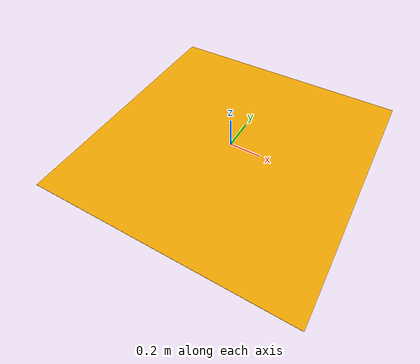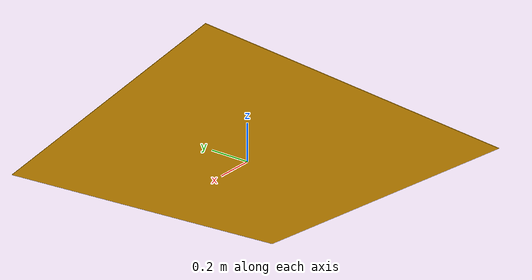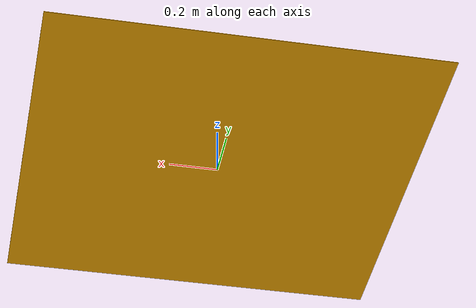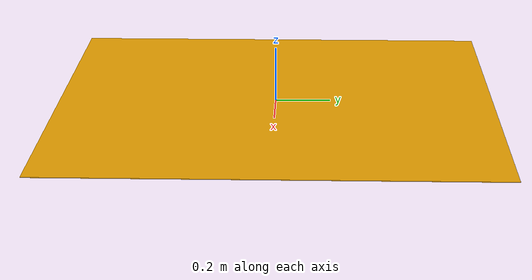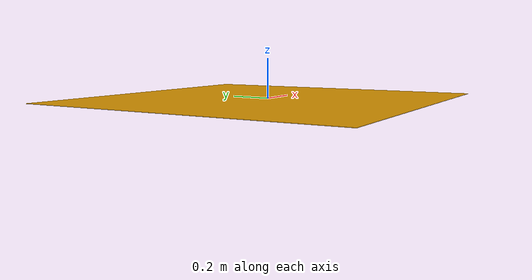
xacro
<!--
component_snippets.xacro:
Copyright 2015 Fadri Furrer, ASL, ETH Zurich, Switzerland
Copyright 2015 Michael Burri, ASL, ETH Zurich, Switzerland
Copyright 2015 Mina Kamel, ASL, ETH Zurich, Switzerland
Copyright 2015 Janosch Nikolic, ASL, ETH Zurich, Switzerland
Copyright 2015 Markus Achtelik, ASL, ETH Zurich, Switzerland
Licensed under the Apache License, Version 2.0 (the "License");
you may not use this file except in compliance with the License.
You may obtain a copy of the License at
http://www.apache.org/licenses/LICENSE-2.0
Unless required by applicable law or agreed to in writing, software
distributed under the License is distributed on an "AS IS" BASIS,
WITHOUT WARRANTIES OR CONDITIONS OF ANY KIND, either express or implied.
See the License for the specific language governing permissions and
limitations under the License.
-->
<?xml version="1.0"?>
<robot name="target" xmlns:xacro="http://ros.org/wiki/xacro">
  <link name="target/base_link">
    <inertial>
      <origin xyz="0 0 0"/>
      <mass value="1.0"/>
      <inertia ixx="1.0" ixy="0.0" ixz="0.0" iyy="1.0" iyz="0.0" izz="1.0"/>
    </inertial>
    <collision>
      <origin xyz="0 0 0" rpy="0 0 0" />
      <geometry>
        <box size="0.8 0.8 0.001" />
      </geometry>
    </collision>
    <visual>
      <origin xyz="0 0 0" rpy="0 0 0" />
      <geometry>
        <mesh filename="package://rotors_description/meshes/target.dae" scale="1 1 1" />
      </geometry>
    </visual>
  </link>

  <xacro:include filename="$(find rotors_description)/urdf/component_snippets.xacro" />

  <xacro:default_imu namespace="target" parent_link="target/base_link" />

  <gazebo>
    <plugin name="landing_target_plugin" filename="librotors_gazebo_landing_target_plugin.so">
      <robotNamespace>target</robotNamespace>
      <linkName>target/base_link</linkName>
    </plugin>
  </gazebo>
</robot>

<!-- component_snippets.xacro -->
<robot xmlns:xacro="http://ros.org/wiki/xacro">
  <xacro:property name="pi" value="3.14159265359" />

  <!-- Macro to add logging to a bag file. -->
  <xacro:macro name="bag_plugin_macro"
    params="namespace bag_file rotor_velocity_slowdown_sim wait_to_record_bag">
    <gazebo>
      <plugin filename="librotors_gazebo_bag_plugin.so" name="rosbag">
        <robotNamespace>${namespace}</robotNamespace>
        <bagFileName>${bag_file}</bagFileName>
        <linkName>${namespace}/base_link</linkName>
        <frameId>${namespace}/base_link</frameId>
        <rotorVelocitySlowdownSim>${rotor_velocity_slowdown_sim}</rotorVelocitySlowdownSim>
	<waitToRecordBag>${wait_to_record_bag}</waitToRecordBag>
      </plugin>
    </gazebo>
  </xacro:macro>

  <!-- Macro to add a camera. -->
  <xacro:macro name="camera_macro"
    params="namespace parent_link camera_suffix frame_rate
      horizontal_fov image_width image_height image_format min_distance
      max_distance noise_mean noise_stddev enable_visual *geometry *origin">
    <link name="${namespace}/camera_${camera_suffix}_link">
      <collision>
        <origin xyz="0 0 0" rpy="0 0 0" />
        <geometry>
          <xacro:insert_block name="geometry" />
        </geometry>
      </collision>
      <xacro:if value="${enable_visual}">
        <visual>
          <origin xyz="0 0 0" rpy="0 ${pi/2} 0" />
          <geometry>
            <xacro:insert_block name="geometry" />
          </geometry>
          <material name="red" />
        </visual>
      </xacro:if>
      <inertial>
        <mass value="1e-5" />
        <origin xyz="0 0 0" rpy="0 0 0" />
        <inertia ixx="1e-6" ixy="0" ixz="0" iyy="1e-6" iyz="0" izz="1e-6" />
      </inertial>
    </link>
    <joint name="${namespace}/camera_${camera_suffix}_joint" type="fixed">
      <xacro:insert_block name="origin" />
      <parent link="${parent_link}" />
      <child link="${namespace}/camera_${camera_suffix}_link" />
    </joint>
    <link name="${namespace}/camera_${camera_suffix}_optical_link" />
    <joint name="${namespace}/camera_${camera_suffix}_optical_joint" type="fixed" >
      <origin xyz="0 0 0" rpy="${-pi/2} 0 ${-pi/2}" />
      <parent link="${namespace}/camera_${camera_suffix}_link" />
      <child link="${namespace}/camera_${camera_suffix}_optical_link" />
    </joint>
    <gazebo reference="${namespace}/camera_${camera_suffix}_link">
      <sensor type="camera" name="${namespace}_camera_${camera_suffix}">
        <update_rate>${frame_rate}</update_rate>
        <camera name="head">
          <horizontal_fov>${horizontal_fov}</horizontal_fov>
          <image>
            <width>${image_width}</width>
            <height>${image_height}</height>
            <format>${image_format}</format>
          </image>
          <clip>
            <near>${min_distance}</near>
            <far>${max_distance}</far>
          </clip>
          <noise>
            <type>gaussian</type>
            <!-- Noise is sampled independently per pixel on each frame.
                 That pixel's noise value is added to each of its color
                 channels, which at that point lie in the range [0,1]. -->
            <mean>${noise_mean}</mean>
            <stddev>${noise_stddev}</stddev>
          </noise>
        </camera>
        <plugin name="${namespace}_camera_${camera_suffix}_controller" filename="libgazebo_ros_camera.so">
          <robotNamespace>${namespace}</robotNamespace>
          <alwaysOn>true</alwaysOn>
          <updateRate>${frame_rate}</updateRate>
          <cameraName>camera_${camera_suffix}</cameraName>
          <imageTopicName>image_raw</imageTopicName>
          <cameraInfoTopicName>camera_info</cameraInfoTopicName>
          <frameName>camera_${camera_suffix}_link</frameName>
          <hackBaseline>0.0</hackBaseline>
          <distortionK1>0.0</distortionK1>
          <distortionK2>0.0</distortionK2>
          <distortionK3>0.0</distortionK3>
          <distortionT1>0.0</distortionT1>
          <distortionT2>0.0</distortionT2>
        </plugin>
      </sensor>
    </gazebo>
  </xacro:macro>

  <!-- Camera joint macro - just the joints, links, and collisions for a single
       camera. -->
  <xacro:macro name="camera_joint_macro"
    params="namespace parent_link camera_suffix enable_visual *origin *geometry" >
    <link name="${namespace}/camera_${camera_suffix}_link">
      <collision>
        <origin xyz="0 0 0" rpy="0 0 0" />
        <geometry>
          <xacro:insert_block name="geometry" />
        </geometry>
      </collision>
      <xacro:if value="${enable_visual}">
        <visual>
          <origin xyz="0 0 0" rpy="0 0 0" />
          <geometry>
            <xacro:insert_block name="geometry" />
          </geometry>
          <material name="red" />
        </visual>
      </xacro:if>
      <inertial>
        <mass value="1e-5" />
        <origin xyz="0 0 0" rpy="0 0 0" />
        <inertia ixx="1e-6" ixy="0" ixz="0" iyy="1e-6" iyz="0" izz="1e-6" />
      </inertial>
    </link>
    <joint name="${namespace}/camera_${camera_suffix}_joint" type="fixed">
      <xacro:insert_block name="origin" />
      <parent link="${parent_link}" />
      <child link="${namespace}/camera_${camera_suffix}_link" />
    </joint>
  </xacro:macro>

  <!-- Camera sensor macro - just image parameters. -->
  <xacro:macro name="camera_sensor_macro"
    params="camera_suffix horizontal_fov image_width image_height
      image_format min_distance max_distance noise_mean noise_stddev
      baseline" >
    <camera name="${camera_suffix}">
      <pose>0 ${-baseline} 0 0 0 0</pose>
      <horizontal_fov>${horizontal_fov}</horizontal_fov>
      <image>
        <width>${image_width}</width>
        <height>${image_height}</height>
        <format>${image_format}</format>
      </image>
      <clip>
        <near>${min_distance}</near>
        <far>${max_distance}</far>
      </clip>
      <noise>
        <type>gaussian</type>
        <!-- Noise is sampled independently per pixel on each frame.
             That pixel's noise value is added to each of its color
             channels, which at that point lie in the range [0,1]. -->
        <mean>${noise_mean}</mean>
        <stddev>${noise_stddev}</stddev>
      </noise>
    </camera>
  </xacro:macro>

  <!-- Macro to add a multicamera (stereo pair). -->
  <xacro:macro name="stereo_camera_macro"
    params="namespace camera_name parent_link frame_rate
      horizontal_fov image_width image_height image_format min_distance
      max_distance noise_mean noise_stddev enable_visual origin_offset_x
      baseline_y origin_offset_z *geometry">
    <!-- These are parameters for the left camera link and then the right
        as well. -->
    <xacro:camera_joint_macro namespace="${namespace}"
      parent_link="${parent_link}"
      camera_suffix="left" enable_visual="${enable_visual}">
      <origin xyz="${origin_offset_x} ${baseline_y/2} ${origin_offset_z}" rpy="0 0 0" />
      <xacro:insert_block name="geometry" />
    </xacro:camera_joint_macro>
    <xacro:camera_joint_macro namespace="${namespace}"
      parent_link="${parent_link}"
      camera_suffix="right" enable_visual="${enable_visual}">
      <origin xyz="${origin_offset_x} ${-baseline_y/2} ${origin_offset_z}" rpy="0 0 0" />
      <xacro:insert_block name="geometry" />
    </xacro:camera_joint_macro>

    <link name="${namespace}/camera_left_optical_link" />
    <joint name="${namespace}/camera_left_optical_joint" type="fixed" >
      <origin xyz="0 0 0" rpy="${-pi/2} 0 ${-pi/2}" />
      <parent link="${namespace}/camera_left_link" />
      <child link="${namespace}/camera_left_optical_link" />
    </joint>

    <!-- Both cameras in the pair are anchored off the left camera frame. -->
    <gazebo reference="${namespace}/camera_left_link">
      <sensor type="multicamera" name="${namespace}_stereo_camera">
        <update_rate>${frame_rate}</update_rate>

        <!-- Here we set up the individual cameras of the stereo head. -->
        <xacro:camera_sensor_macro camera_suffix="left"
            horizontal_fov="${horizontal_fov}" image_width="${image_width}"
            image_height="${image_height}" image_format="${image_format}"
            min_distance="${min_distance}" max_distance="${max_distance}"
            noise_mean="${noise_mean}" noise_stddev="${noise_stddev}"
            baseline="0">
        </xacro:camera_sensor_macro>

        <xacro:camera_sensor_macro camera_suffix="right"
            horizontal_fov="${horizontal_fov}" image_width="${image_width}"
            image_height="${image_height}" image_format="${image_format}"
            min_distance="${min_distance}" max_distance="${max_distance}"
            noise_mean="${noise_mean}" noise_stddev="${noise_stddev}"
            baseline="${baseline_y}">
        </xacro:camera_sensor_macro>

        <!-- Stereo controller, setting the transforms between the two cameras. -->
        <plugin name="${namespace}_stereo_camera_controller" filename="libgazebo_ros_multicamera.so">
          <alwaysOn>true</alwaysOn>
          <updateRate>0.0</updateRate>
          <cameraName>${camera_name}</cameraName>
          <imageTopicName>image_raw</imageTopicName>
          <cameraInfoTopicName>camera_info</cameraInfoTopicName>
          <frameName>${camera_name}/camera_left_link</frameName>
          <hackBaseline>${baseline_y}</hackBaseline>
          <distortionK1>0.0</distortionK1>
          <distortionK2>0.0</distortionK2>
          <distortionK3>0.0</distortionK3>
          <distortionT1>0.0</distortionT1>
          <distortionT2>0.0</distortionT2>
        </plugin>
      </sensor>
    </gazebo>
  </xacro:macro>

  <!-- Macro to add the controller interface. -->
  <xacro:macro name="controller_plugin_macro" params="namespace imu_sub_topic">
    <gazebo>
      <plugin name="controller_interface" filename="librotors_gazebo_controller_interface.so">
        <robotNamespace>${namespace}</robotNamespace>
        <commandAttitudeThrustSubTopic>command/attitude</commandAttitudeThrustSubTopic>
        <commandRateThrustSubTopic>command/rate</commandRateThrustSubTopic>
        <commandMotorSpeedSubTopic>command/motor_speed</commandMotorSpeedSubTopic>
        <imuSubTopic>${imu_sub_topic}</imuSubTopic>
        <motorSpeedCommandPubTopic>gazebo/command/motor_speed</motorSpeedCommandPubTopic>
      </plugin>
    </gazebo>
  </xacro:macro>

  <!-- ==================== ROS INTERFACE MACRO ====================== -->

  <!-- ================== MAVLINK INTERFACE MACRO ==================== -->
  <xacro:macro name="mavlink_interface_macro"
    params="namespace mavlink_sub_topic imu_sub_topic mavlink_pub_topic
      motors_speeds_pub_topic gps_update_freq rotor_count reference_magnetic_field_north
      reference_magnetic_field_east reference_magnetic_field_down reference_latitude
      reference_longitude reference_altitude">
    <gazebo>
      <plugin name="mavlink_interface" filename="librotors_gazebo_mavlink_interface.so">
        <robotNamespace>${namespace}</robotNamespace>
	<mavlinkControlSubTopic>${mavlink_sub_topic}</mavlinkControlSubTopic>
        <imuSubTopic>${imu_sub_topic}</imuSubTopic>
        <mavlinkHilSensorPubTopic>${mavlink_pub_topic}</mavlinkHilSensorPubTopic>
	<motorSpeedsPubTopic>${motors_speeds_pub_topic}</motorSpeedsPubTopic>
	<gpsUpdateFreq>${gps_update_freq}</gpsUpdateFreq> <!-- Frequency of HIL GPS messages [Hz] -->
	<rotorCount>${rotor_count}</rotorCount>
        <referenceMagNorth>${reference_magnetic_field_north}</referenceMagNorth>
        <referenceMagEast>${reference_magnetic_field_east}</referenceMagEast>
        <referenceMagDown>${reference_magnetic_field_down}</referenceMagDown>
	<referenceLatitude>${reference_latitude}</referenceLatitude> <!-- the initial latitude [degrees [-90, 90]] -->
        <referenceLongitude>${reference_longitude}</referenceLongitude> <!-- the initial longitude [degrees [-180, 180]] -->
        <referenceAltitude>${reference_altitude}</referenceAltitude> <!-- the initial altitude [m] -->
      </plugin>
    </gazebo>
  </xacro:macro>

  <!-- Macro to add an IMU. -->
  <xacro:macro name="imu_plugin_macro"
    params="namespace imu_suffix parent_link imu_topic
      mass_imu_sensor gyroscope_noise_density gyroscope_random_walk
      gyroscope_bias_correlation_time gyroscope_turn_on_bias_sigma
      accelerometer_noise_density accelerometer_random_walk
      accelerometer_bias_correlation_time accelerometer_turn_on_bias_sigma
      measurement_divisor *inertia *origin">
    <!-- IMU link -->
    <link name="${namespace}/imu${imu_suffix}_link">
      <inertial>
        <xacro:insert_block name="inertia" />
        <mass value="${mass_imu_sensor}" />  <!-- [kg] -->
        <origin xyz="0 0 0" rpy="0 0 0" />
      </inertial>
    </link>
    <!-- IMU joint -->
    <joint name="${namespace}/imu${imu_suffix}_joint" type="revolute">
      <xacro:insert_block name="origin" />
      <parent link="${parent_link}" />
      <child link="${namespace}/imu${imu_suffix}_link" />
      <limit upper="0" lower="0" effort="0" velocity="0" />
    </joint>
    <gazebo>
      <plugin filename="librotors_gazebo_imu_plugin.so" name="rotors_gazebo_imu${imu_suffix}_plugin">
      <!-- A good description of the IMU parameters can be found in the kalibr documentation:
           https://github.com/ethz-asl/kalibr/wiki/IMU-Noise-Model-and-Intrinsics -->
        <robotNamespace>${namespace}</robotNamespace> <!-- (string, required): ros namespace in which the messages are published -->
        <linkName>${namespace}/imu${imu_suffix}_link</linkName> <!-- (string, required): name of the body which holds the IMU sensor -->
        <imuTopic>${imu_topic}</imuTopic> <!-- (string): name of the sensor output topic and prefix of service names (defaults to imu) -->
        <gyroscopeNoiseDensity>${gyroscope_noise_density}</gyroscopeNoiseDensity> <!-- Gyroscope noise density (two-sided spectrum) [rad/s/sqrt(Hz)] -->
        <gyroscopeRandomWalk>${gyroscope_random_walk}</gyroscopeRandomWalk> <!-- Gyroscope bias random walk [rad/s/s/sqrt(Hz)] -->
        <gyroscopeBiasCorrelationTime>${gyroscope_bias_correlation_time}</gyroscopeBiasCorrelationTime> <!-- Gyroscope bias correlation time constant [s] -->
        <gyroscopeTurnOnBiasSigma>${gyroscope_turn_on_bias_sigma}</gyroscopeTurnOnBiasSigma> <!-- Gyroscope turn on bias standard deviation [rad/s] -->
        <accelerometerNoiseDensity>${accelerometer_noise_density}</accelerometerNoiseDensity> <!-- Accelerometer noise density (two-sided spectrum) [m/s^2/sqrt(Hz)] -->
        <accelerometerRandomWalk>${accelerometer_random_walk}</accelerometerRandomWalk> <!-- Accelerometer bias random walk. [m/s^2/s/sqrt(Hz)] -->
        <accelerometerBiasCorrelationTime>${accelerometer_bias_correlation_time}</accelerometerBiasCorrelationTime> <!-- Accelerometer bias correlation time constant [s] -->
        <accelerometerTurnOnBiasSigma>${accelerometer_turn_on_bias_sigma}</accelerometerTurnOnBiasSigma> <!-- Accelerometer turn on bias standard deviation [m/s^2] -->
        <measurementDivisor>${measurement_divisor}</measurementDivisor> <!-- only every (seq % measurementDivisor) == 0 measurement is published [int] -->
      </plugin>
    </gazebo>
  </xacro:macro>

  <!-- Macro to add a generic odometry sensor. -->
  <xacro:macro name="odometry_plugin_macro"
    params="
      namespace odometry_sensor_suffix parent_link pose_topic pose_with_covariance_topic
      position_topic transform_topic odometry_topic parent_frame_id child_frame_id
      mass_odometry_sensor measurement_divisor measurement_delay unknown_delay
      noise_normal_position noise_normal_quaternion noise_normal_linear_velocity
      noise_normal_angular_velocity noise_uniform_position
      noise_uniform_quaternion noise_uniform_linear_velocity
      noise_uniform_angular_velocity enable_odometry_map odometry_map
      image_scale *inertia *origin">
    <!-- odometry link -->
    <link name="${namespace}/odometry_sensor${odometry_sensor_suffix}_link">
      <inertial>
        <xacro:insert_block name="inertia" />
        <mass value="${mass_odometry_sensor}" />  <!-- [kg] -->
      </inertial>
    </link>
    <!-- odometry joint -->
    <joint name="${namespace}/odometry_sensor${odometry_sensor_suffix}_joint" type="revolute">
      <parent link="${parent_link}" />
      <xacro:insert_block name="origin" />
      <child link="${namespace}/odometry_sensor${odometry_sensor_suffix}_link" />
      <limit upper="0" lower="0" effort="0" velocity="0" />
    </joint>
    <gazebo>
      <plugin filename="librotors_gazebo_odometry_plugin.so" name="odometry_sensor${odometry_sensor_suffix}">
        <linkName>${namespace}/odometry_sensor${odometry_sensor_suffix}_link</linkName>
        <robotNamespace>${namespace}</robotNamespace>
        <poseTopic>${pose_topic}</poseTopic>
        <poseWithCovarianceTopic>${pose_with_covariance_topic}</poseWithCovarianceTopic>
        <positionTopic>${position_topic}</positionTopic>
        <transformTopic>${transform_topic}</transformTopic>
        <odometryTopic>${odometry_topic}</odometryTopic>
        <parentFrameId>${parent_frame_id}</parentFrameId> <!-- Use the scoped link name here. e.g. Model::link. -->
        <childFrameId>${child_frame_id}</childFrameId>
        <measurementDivisor>${measurement_divisor}</measurementDivisor> <!-- only every (seq % measurementDivisor) == 0 measurement is published [int] -->
        <measurementDelay>${measurement_delay}</measurementDelay> <!-- time that measurement gets held back before it's published in [simulation cycles (int)] -->
        <unknownDelay>${unknown_delay}</unknownDelay> <!-- additional delay, that just gets added to the timestamp [s] -->
        <noiseNormalPosition>${noise_normal_position}</noiseNormalPosition> <!-- standard deviation of additive white gaussian noise [m] -->
        <noiseNormalQuaternion>${noise_normal_quaternion}</noiseNormalQuaternion> <!-- standard deviation white gaussian noise [rad]: q_m = q*quaternionFromSmallAngleApproximation(noiseNormalQ) -->
        <noiseNormalLinearVelocity>${noise_normal_linear_velocity}</noiseNormalLinearVelocity> <!-- standard deviation of additive white gaussian noise [m/s] -->
        <noiseNormalAngularVelocity>${noise_normal_angular_velocity}</noiseNormalAngularVelocity> <!-- standard deviation of additive white gaussian noise [rad/s] -->
        <noiseUniformPosition>${noise_uniform_position}</noiseUniformPosition> <!-- symmetric bounds of uniform noise [m] -->
        <noiseUniformQuaternion>${noise_uniform_quaternion}</noiseUniformQuaternion> <!-- symmetric bounds of uniform noise [rad], computation see above -->
        <noiseUniformLinearVelocity>${noise_uniform_linear_velocity}</noiseUniformLinearVelocity> <!-- symmetric bounds of uniform noise [m/s] -->
        <noiseUniformAngularVelocity>${noise_uniform_angular_velocity}</noiseUniformAngularVelocity> <!-- symmetric bounds of uniform noise [rad/s] -->
        <xacro:if value="${enable_odometry_map}">
          <covarianceImage>package://rotors_gazebo/resource/${odometry_map}</covarianceImage> <!-- a bitmap image describing where the sensor works (white), and where not (black) -->
          <covarianceImageScale>${image_scale}</covarianceImageScale> <!-- the scale of the image in the gazebo world, if set to 1.0, 1 pixel in the image corresponds to 1 meter in the world -->
        </xacro:if>
      </plugin>
    </gazebo>
  </xacro:macro>

  <!-- Macro to add a GPS sensor. -->
  <xacro:macro name="gps_plugin_macro"
    params="namespace gps_suffix parent_link gps_topic ground_speed_topic
      mass_gps_sensor horizontal_pos_std_dev vertical_pos_std_dev
      horizontal_vel_std_dev vertical_vel_std_dev *inertia *origin">
    <!-- GPS link -->
    <link name="${namespace}/gps${gps_suffix}_link">
      <inertial>
        <xacro:insert_block name="inertia" />
        <mass value="${mass_gps_sensor}" />  <!-- [kg] -->
        <origin xyz="0 0 0" rpy="0 0 0" />
      </inertial>
    </link>
    <!-- GPS joint -->
    <joint name="${namespace}/gps${gps_suffix}_joint" type="revolute">
      <xacro:insert_block name="origin" />
      <parent link="${parent_link}" />
      <child link="${namespace}/gps${gps_suffix}_link" />
      <limit upper="0" lower="0" effort="0" velocity="0" />
    </joint>
    <gazebo reference="${namespace}/gps${gps_suffix}_link">
      <sensor type="gps" name="${namespace}_gps${gps_suffix}">
        <pose>0 0 0 0 0 0</pose>
        <visualize>0</visualize>
        <always_on>1</always_on>
        <update_rate>5</update_rate>
        <gps>
          <position_sensing>
            <horizontal>
              <noise type="gaussian">
                <mean>0.0</mean>
                <stddev>${horizontal_pos_std_dev}</stddev>
                <bias_mean>0.0</bias_mean>
                <bias_stddev>0.0</bias_stddev>
              </noise>
            </horizontal>
            <vertical>
              <noise type="gaussian">
                <mean>0.0</mean>
                <stddev>${vertical_pos_std_dev}</stddev>
                <bias_mean>0.0</bias_mean>
                <bias_stddev>0.0</bias_stddev>
              </noise>
            </vertical>
          </position_sensing>
          <velocity_sensing>
            <horizontal>
              <noise type="gaussian">
                <mean>0.0</mean>
                <stddev>${horizontal_vel_std_dev}</stddev>
                <bias_mean>0.0</bias_mean>
                <bias_stddev>0.0</bias_stddev>
              </noise>
            </horizontal>
            <vertical>
              <noise type="gaussian">
                <mean>0.0</mean>
                <stddev>${vertical_vel_std_dev}</stddev>
                <bias_mean>0.0</bias_mean>
                <bias_stddev>0.0</bias_stddev>
              </noise>
            </vertical>
          </velocity_sensing>
        </gps>
        <plugin filename="librotors_gazebo_gps_plugin.so" name="rotors_gazebo_gps${gps_suffix}_plugin">
          <robotNamespace>${namespace}</robotNamespace> <!-- (string, required): ros namespace in which the messages are published -->
          <linkName>${namespace}/gps${gps_suffix}_link</linkName> <!-- (string, required): name of the body which holds the GPS sensor -->
          <gpsTopic>${gps_topic}</gpsTopic> <!-- (string): name of the sensor output topic and prefix of service names (defaults to 'gps') -->
          <groundSpeedTopic>${ground_speed_topic}</groundSpeedTopic> <!-- (string): name of the ground speed output topic (defaults to 'ground_speed') -->
          <horPosStdDev>${horizontal_pos_std_dev}</horPosStdDev> <!-- standard deviation for horizontal position noise [m] -->
          <verPosStdDev>${vertical_pos_std_dev}</verPosStdDev> <!-- standard deviation for vertical position noise [m] -->
          <horVelStdDev>${horizontal_vel_std_dev}</horVelStdDev> <!-- standard deviation for horizontal speed noise [m/s] -->
          <verVelStdDev>${vertical_vel_std_dev}</verVelStdDev> <!-- standard deviation for vertical speed noise [m/s] -->
        </plugin>
      </sensor>
    </gazebo>
  </xacro:macro>

  <!-- Macro to add a magnetometer. -->
  <xacro:macro name="magnetometer_plugin_macro"
    params="namespace magnetometer_suffix parent_link magnetometer_topic
      mass_magnetometer_sensor ref_mag_north ref_mag_east ref_mag_down
      noise_normal noise_uniform_initial_bias *inertia *origin">
    <!-- Magnetometer link -->
    <link name="${namespace}/magnetometer${magnetometer_suffix}_link">
      <inertial>
        <xacro:insert_block name="inertia" />
        <mass value="${mass_magnetometer_sensor}" />  <!-- [kg] -->
        <origin xyz="0 0 0" rpy="0 0 0" />
      </inertial>
    </link>
    <!-- Magnetometer joint -->
    <joint name="${namespace}/magnetometer${magnetometer_suffix}_joint" type="revolute">
      <xacro:insert_block name="origin" />
      <parent link="${parent_link}" />
      <child link="${namespace}/magnetometer${magnetometer_suffix}_link" />
      <limit upper="0" lower="0" effort="0" velocity="0" />
    </joint>
    <gazebo>
      <plugin filename="librotors_gazebo_magnetometer_plugin.so" name="rotors_gazebo_magnetometer${magnetometer_suffix}_plugin">
        <robotNamespace>${namespace}</robotNamespace> <!-- (string, required): ros namespace in which the messages are published -->
        <linkName>${namespace}/magnetometer${magnetometer_suffix}_link</linkName> <!-- (string, required): name of the body which holds the magnetometer -->
        <magnetometerTopic>${magnetometer_topic}</magnetometerTopic> <!-- (string): name of the sensor output topic and prefix of service names (defaults to 'magnetic_field') -->
        <refMagNorth>${ref_mag_north}</refMagNorth>
        <refMagEast>${ref_mag_east}</refMagEast>
        <refMagDown>${ref_mag_down}</refMagDown>
        <noiseNormal>${noise_normal}</noiseNormal> <!-- standard deviation of additive white gaussian noise [Tesla] -->
        <noiseUniformInitialBias>${noise_uniform_initial_bias}</noiseUniformInitialBias> <!-- symmetric bounds of uniform noise for initial sensor bias [Tesla] -->
      </plugin>
    </gazebo>
  </xacro:macro>

  <!-- Macro to add an air pressure sensor. -->
  <xacro:macro name="pressure_sensor_plugin_macro"
    params="namespace pressure_sensor_suffix parent_link pressure_topic
      mass_pressure_sensor reference_altitude pressure_variance *inertia
      *origin">
    <!-- Pressure sensor link -->
    <link name="${namespace}/pressure_sensor${pressure_sensor_suffix}_link">
      <inertial>
        <xacro:insert_block name="inertia" />
        <mass value="${mass_pressure_sensor}" />  <!-- [kg] -->
        <origin xyz="0 0 0" rpy="0 0 0" />
      </inertial>
    </link>
    <!-- Pressure sensor joint -->
    <joint name="${namespace}/pressure_sensor${pressure_sensor_suffix}_joint" type="revolute">
      <xacro:insert_block name="origin" />
      <parent link="${parent_link}" />
      <child link="${namespace}/pressure_sensor${pressure_sensor_suffix}_link" />
      <limit upper="0" lower="0" effort="0" velocity="0" />
    </joint>
    <gazebo>
      <plugin filename="librotors_gazebo_pressure_plugin.so" name="rotors_gazebo_pressure_sensor${pressure_sensor_suffix}_plugin">
        <robotNamespace>${namespace}</robotNamespace> <!-- (string, required): ros namespace in which the messages are published -->
        <linkName>${namespace}/pressure_sensor${pressure_sensor_suffix}_link</linkName> <!-- (string, required): name of the body which holds the pressure sensor -->
        <pressureTopic>${pressure_topic}</pressureTopic> <!-- (string): name of the sensor output topic and prefix of service names (defaults to 'air_pressure') -->
        <referenceAltitude>${reference_altitude}</referenceAltitude> <!-- the initial altitude [m] -->
        <pressureVariance>${pressure_variance}</pressureVariance> <!-- the air pressure variance [Pa^2] -->
      </plugin>
    </gazebo>
  </xacro:macro>

  <!-- Macro to add the wind plugin. -->
  <xacro:macro name="wind_plugin_macro"
    params="namespace xyz_offset wind_direction wind_force_mean
      wind_gust_direction wind_gust_duration wind_gust_start
      wind_gust_force_mean wind_speed_mean use_custom_static_wind_field
      custom_wind_field_path">
    <gazebo>
      <plugin filename="librotors_gazebo_wind_plugin.so" name="wind_plugin">
        <frameId>world</frameId>
        <linkName>${namespace}/base_link</linkName>
        <robotNamespace>${namespace}</robotNamespace>
        <xyzOffset>${xyz_offset}</xyzOffset>
        <windDirection>${wind_direction}</windDirection>
        <windForceMean>${wind_force_mean}</windForceMean>
        <windGustDirection>${wind_gust_direction}</windGustDirection>
        <windGustDuration>${wind_gust_duration}</windGustDuration>
        <windGustStart>${wind_gust_start}</windGustStart>
        <windGustForceMean>${wind_gust_force_mean}</windGustForceMean>
        <windSpeedMean>${wind_speed_mean}</windSpeedMean>
        <useCustomStaticWindField>${use_custom_static_wind_field}</useCustomStaticWindField>
        <customWindFieldPath>${custom_wind_field_path}</customWindFieldPath> <!-- from ~/.ros -->
      </plugin>
    </gazebo>
  </xacro:macro>

  <!-- VI sensor macros -->
  <!-- Macro to add a VI-sensor camera. -->
  <xacro:macro name="vi_sensor_camera_macro"
    params="namespace parent_link camera_suffix frame_rate *origin">
    <xacro:camera_macro
      namespace="${namespace}"
      parent_link="${parent_link}"
      camera_suffix="${camera_suffix}"
      frame_rate="${frame_rate}"
      horizontal_fov="1.3962634"
      image_width="752"
      image_height="480"
      image_format="L8"
      min_distance="0.02"
      max_distance="30"
      noise_mean="0.0"
      noise_stddev="0.007"
      enable_visual="true">
      <mesh filename="package://rotors_description/meshes/vi_camera.dae" scale="1 1 1" />
      <xacro:insert_block name="origin" />
    </xacro:camera_macro>
  </xacro:macro>

  <!-- Macro to add a VI-sensor stereo camera. -->
  <xacro:macro name="vi_sensor_stereo_camera_macro"
    params="namespace parent_link frame_rate origin_offset_x baseline_y origin_offset_z max_range">
    <xacro:stereo_camera_macro
      namespace="${namespace}"
      camera_name="vi_sensor"
      parent_link="${parent_link}"
      frame_rate="${frame_rate}"
      horizontal_fov="1.3962634"
      image_width="752"
      image_height="480"
      image_format="L8"
      min_distance="0.02"
      max_distance="${max_range}"
      noise_mean="0.0"
      noise_stddev="0.007"
      enable_visual="false"
      origin_offset_x="${origin_offset_x}"
      baseline_y="${baseline_y}"
      origin_offset_z="${origin_offset_z}" >
      <cylinder length="0.01" radius="0.007" />
    </xacro:stereo_camera_macro>
  </xacro:macro>

  <!-- Macro to add a depth camera on the VI-sensor. -->
  <xacro:macro name="vi_sensor_depth_macro"
    params="namespace parent_link camera_suffix frame_rate max_range *origin">
    <link name="${namespace}/camera_${camera_suffix}_link">
      <collision>
        <origin xyz="0 0 0" rpy="0 0 0" />
        <geometry>
          <cylinder length="0.01" radius="0.007" />
        </geometry>
      </collision>
      <inertial>
        <mass value="1e-5" />
        <origin xyz="0 0 0" rpy="0 0 0" />
        <inertia ixx="1e-6" ixy="0" ixz="0" iyy="1e-6" iyz="0" izz="1e-6" />
      </inertial>
    </link>
    <joint name="${namespace}/camera_${camera_suffix}_joint" type="fixed">
      <xacro:insert_block name="origin" />
      <parent link="${parent_link}" />
      <child link="${namespace}/camera_${camera_suffix}_link" />
      <limit upper="0" lower="0" effort="0" velocity="0" />
    </joint>
    <!-- Optical center of camera -->
    <link name="${namespace}/camera_${camera_suffix}_optical_center_link" />
    <joint name="${namespace}/camera_${camera_suffix}_optical_center_joint" type="fixed">
      <origin xyz="0 0 0" rpy="${-pi/2} 0 ${-pi/2}" />
      <parent link="${namespace}/camera_${camera_suffix}_link" />
      <child link="${namespace}/camera_${camera_suffix}_optical_center_link" />
      <limit upper="0" lower="0" effort="0" velocity="0" />
    </joint>
    <gazebo reference="${namespace}/camera_${camera_suffix}_link">
      <sensor type="depth" name="${namespace}_camera_{camera_suffix}">
        <always_on>true</always_on>
        <update_rate>${frame_rate}</update_rate>
        <camera>
          <horizontal_fov>2</horizontal_fov>
          <image>
            <format>L8</format>
            <width>640</width>
            <height>480</height>
          </image>
          <clip>
            <near>0.01</near>
            <far>${max_range}</far>
          </clip>
        </camera>
        <plugin name="${namespace}_camera_{camera_suffix}" filename="libgazebo_ros_openni_kinect.so">
          <robotNamespace>${namespace}</robotNamespace>
          <alwaysOn>true</alwaysOn>
          <baseline>0.11</baseline>
          <updateRate>${frame_rate}</updateRate>
          <cameraName>camera_${camera_suffix}</cameraName>
          <imageTopicName>camera/image_raw</imageTopicName>
          <cameraInfoTopicName>camera/camera_info</cameraInfoTopicName>
          <depthImageTopicName>depth/disparity</depthImageTopicName>
          <depthImageCameraInfoTopicName>depth/camera_info</depthImageCameraInfoTopicName>
          <pointCloudTopicName>depth/points</pointCloudTopicName>
          <frameName>camera_${camera_suffix}_optical_center_link</frameName>
          <pointCloudCutoff>0.5</pointCloudCutoff>
          <pointCloudCutoffMax>${max_range}</pointCloudCutoffMax>
          <distortionK1>0.0</distortionK1>
          <distortionK2>0.0</distortionK2>
          <distortionK3>0.0</distortionK3>
          <distortionT1>0.0</distortionT1>
          <distortionT2>0.0</distortionT2>
        </plugin>
      </sensor>
    </gazebo>
  </xacro:macro>

  <!-- VI-Sensor Macro -->
  <xacro:macro name="vi_sensor_macro" params="namespace parent_link enable_cameras enable_depth enable_ground_truth *origin">
    <!-- Vi Sensor Link -->
    <link name="${namespace}/vi_sensor_link">
      <collision>
        <origin xyz="0 0 0" rpy="0 0 0" />
        <geometry>
          <box size="0.03 0.133 0.057" />
        </geometry>
      </collision>

      <visual>
        <origin xyz="0 0 0" rpy="0 0 0" />
        <geometry>
          <mesh filename="package://rotors_description/meshes/vi_sensor.dae" scale="1 1 1" />
        </geometry>
      </visual>

      <inertial>
        <mass value="0.13" />
        <origin xyz="0 0 0" rpy="0 0 0" />
        <inertia ixx="1e-6" ixy="0" ixz="0" iyy="1e-6" iyz="0" izz="1e-6" />
      </inertial>
    </link>
    <joint name="${namespace}_vi_sensor_joint" type="fixed">
      <xacro:insert_block name="origin" />
      <parent link="${parent_link}" />
      <child link="${namespace}/vi_sensor_link" />
    </joint>
    <!-- Cameras -->
    <xacro:if value="${enable_cameras}">
      <!-- Insert stereo pair. -->
      <xacro:vi_sensor_stereo_camera_macro
        namespace="${namespace}" parent_link="${namespace}/vi_sensor_link"
        frame_rate="30.0" origin_offset_x="0.015" baseline_y="${0.055*2}"
        origin_offset_z="0.0065" max_range="30.0">
      </xacro:vi_sensor_stereo_camera_macro>
    </xacro:if>

    <!-- Depth Sensor -->
    <xacro:if value="${enable_depth}">
      <xacro:vi_sensor_depth_macro
        namespace="${namespace}" parent_link="${namespace}/vi_sensor_link"
        camera_suffix="depth" frame_rate="30.0" max_range="10.0">
        <origin xyz="0.015 0.055 0.0065" rpy="0 0 0" />
      </xacro:vi_sensor_depth_macro>
    </xacro:if>

    <!-- Groundtruth -->
    <xacro:if value="${enable_ground_truth}">
      <!-- Odometry Sensor -->
      <xacro:odometry_plugin_macro
        namespace="${namespace}/ground_truth"
        odometry_sensor_suffix=""
        parent_link="${namespace}/vi_sensor_link"
        pose_topic="pose"
        pose_with_covariance_topic="pose_with_covariance"
        position_topic="position"
        transform_topic="transform"
        odometry_topic="odometry"
        parent_frame_id="world"
        child_frame_id="${namespace}/base_link"
        mass_odometry_sensor="0.00001"
        measurement_divisor="1"
        measurement_delay="0"
        unknown_delay="0.0"
        noise_normal_position="0 0 0"
        noise_normal_quaternion="0 0 0"
        noise_normal_linear_velocity="0 0 0"
        noise_normal_angular_velocity="0 0 0"
        noise_uniform_position="0 0 0"
        noise_uniform_quaternion="0 0 0"
        noise_uniform_linear_velocity="0 0 0"
        noise_uniform_angular_velocity="0 0 0"
        enable_odometry_map="false"
        odometry_map=""
        image_scale="">
        <inertia ixx="0.00001" ixy="0.0" ixz="0.0" iyy="0.00001" iyz="0.0" izz="0.00001" /> <!-- [kg m^2] [kg m^2] [kg m^2] [kg m^2] [kg m^2] [kg m^2] -->
        <origin xyz="0.0 0.0 0.0" rpy="0.0 0.0 0.0" />
      </xacro:odometry_plugin_macro>
    </xacro:if>

    <!-- ADIS16448 IMU. -->
    <xacro:imu_plugin_macro
      namespace="${namespace}"
      imu_suffix=""
      parent_link="${namespace}/vi_sensor_link"
      imu_topic="imu"
      mass_imu_sensor="0.015"
      gyroscope_noise_density="0.0003394"
      gyroscope_random_walk="0.000038785"
      gyroscope_bias_correlation_time="1000.0"
      gyroscope_turn_on_bias_sigma="0.0087"
      accelerometer_noise_density="0.004"
      accelerometer_random_walk="0.006"
      accelerometer_bias_correlation_time="300.0"
      accelerometer_turn_on_bias_sigma="0.1960"
      measurement_divisor="1">
      <inertia ixx="0.00001" ixy="0.0" ixz="0.0" iyy="0.00001" iyz="0.0" izz="0.00001" />
      <origin xyz="0.015 0 0.0113" rpy="0 0 0" />
    </xacro:imu_plugin_macro>
  </xacro:macro>

  <xacro:macro name="ground_truth_imu_and_odometry" params="namespace parent_link">
    <!-- Mount an IMU providing ground truth. -->
    <xacro:imu_plugin_macro
      namespace="${namespace}"
      imu_suffix="gt"
      parent_link="${parent_link}"
      imu_topic="ground_truth/imu"
      mass_imu_sensor="0.00001"
      gyroscope_noise_density="0.0"
      gyroscope_random_walk="0.0"
      gyroscope_bias_correlation_time="1000.0"
      gyroscope_turn_on_bias_sigma="0.0"
      accelerometer_noise_density="0.0"
      accelerometer_random_walk="0.0"
      accelerometer_bias_correlation_time="300.0"
      accelerometer_turn_on_bias_sigma="0.0"
      measurement_divisor="1">
      <inertia ixx="0.00001" ixy="0.0" ixz="0.0" iyy="0.00001" iyz="0.0" izz="0.00001" />
      <origin xyz="0 0 0" rpy="0 0 0" />
    </xacro:imu_plugin_macro>

    <!-- Mount a generic odometry sensor providing ground truth. -->
    <xacro:odometry_plugin_macro
      namespace="${namespace}"
      odometry_sensor_suffix="gt"
      parent_link="${parent_link}"
      pose_topic="ground_truth/pose"
      pose_with_covariance_topic="ground_truth/pose_with_covariance"
      position_topic="ground_truth/position"
      transform_topic="ground_truth/transform"
      odometry_topic="ground_truth/odometry"
      parent_frame_id="world"
      child_frame_id="${namespace}/base_link"
      mass_odometry_sensor="0.00001"
      measurement_divisor="1"
      measurement_delay="0"
      unknown_delay="0.0"
      noise_normal_position="0.008 0.008 0.008"
      noise_normal_quaternion="0.0001 0.0001 0.0001"
      noise_normal_linear_velocity="0.0005 0.0005 0.0005"
      noise_normal_angular_velocity="0.0003 0.0003 0.0003"
      noise_uniform_position="0 0 0"
      noise_uniform_quaternion="0 0 0"
      noise_uniform_linear_velocity="0 0 0"
      noise_uniform_angular_velocity="0 0 0"
      enable_odometry_map="false"
      odometry_map=""
      image_scale="">
      <inertia ixx="0.00001" ixy="0.0" ixz="0.0" iyy="0.00001" iyz="0.0" izz="0.00001" /> <!-- [kg m^2] [kg m^2] [kg m^2] [kg m^2] [kg m^2] [kg m^2] -->
      <origin xyz="0.0 0.0 0.0" rpy="0.0 0.0 0.0" />
    </xacro:odometry_plugin_macro>
  </xacro:macro>

  <xacro:macro name="default_imu" params="namespace parent_link">
    <!-- ADIS16448 IMU. -->
    <xacro:imu_plugin_macro
      namespace="${namespace}"
      imu_suffix=""
      parent_link="${parent_link}"
      imu_topic="imu"
      mass_imu_sensor="0.015"
      gyroscope_noise_density="0.0003394"
      gyroscope_random_walk="0.000038785"
      gyroscope_bias_correlation_time="1000.0"
      gyroscope_turn_on_bias_sigma="0.0087"
      accelerometer_noise_density="0.004"
      accelerometer_random_walk="0.006"
      accelerometer_bias_correlation_time="300.0"
      accelerometer_turn_on_bias_sigma="0.1960"
      measurement_divisor="1">
      <inertia ixx="0.00001" ixy="0.0" ixz="0.0" iyy="0.00001" iyz="0.0" izz="0.00001" />
      <origin xyz="0 0 0" rpy="0 0 0" />
    </xacro:imu_plugin_macro>
  </xacro:macro>

  <xacro:macro name="default_gps" params="namespace parent_link">
    <!-- Default GPS. -->
    <xacro:gps_plugin_macro
      namespace="${namespace}"
      gps_suffix=""
      parent_link="${parent_link}"
      gps_topic="gps"
      ground_speed_topic="ground_speed"
      mass_gps_sensor="0.015"
      horizontal_pos_std_dev="3.0"
      vertical_pos_std_dev="6.0"
      horizontal_vel_std_dev="0.1"
      vertical_vel_std_dev="0.1">
      <inertia ixx="0.00001" ixy="0.0" ixz="0.0" iyy="0.00001" iyz="0.0" izz="0.00001" />
      <origin xyz="0 0 0" rpy="0 0 0" />
    </xacro:gps_plugin_macro>
  </xacro:macro>

  <xacro:macro name="default_magnetometer" params="namespace parent_link">
    <!-- ADIS16448 Magnetometer. -->
    <xacro:magnetometer_plugin_macro
      namespace="${namespace}"
      magnetometer_suffix=""
      parent_link="${parent_link}"
      magnetometer_topic="magnetic_field"
      mass_magnetometer_sensor="0.015"
      ref_mag_north="0.000021493"
      ref_mag_east="0.000000815"
      ref_mag_down="0.000042795"
      noise_normal="0.000000080 0.000000080 0.000000080"
      noise_uniform_initial_bias="0.000000400 0.000000400 0.000000400">
      <inertia ixx="0.00001" ixy="0.0" ixz="0.0" iyy="0.00001" iyz="0.0" izz="0.00001" />
      <origin xyz="0 0 0" rpy="0 0 0" />
    </xacro:magnetometer_plugin_macro>
  </xacro:macro>

  <xacro:macro name="default_pressure_sensor" params="namespace parent_link">
    <xacro:pressure_sensor_plugin_macro
      namespace="${namespace}"
      pressure_sensor_suffix=""
      parent_link="${parent_link}"
      pressure_topic="air_pressure"
      mass_pressure_sensor="0.015"
      reference_altitude="500.0"
      pressure_variance="0.0">
      <inertia ixx="0.00001" ixy="0.0" ixz="0.0" iyy="0.00001" iyz="0.0" izz="0.00001" />
      <origin xyz="0 0 0" rpy="0 0 0" />
    </xacro:pressure_sensor_plugin_macro>
  </xacro:macro>

  <xacro:macro name="default_mavlink_interface" params="namespace imu_sub_topic rotor_count">
    <xacro:mavlink_interface_macro
      namespace="${namespace}"
      mavlink_sub_topic="/mavlink/from"
      imu_sub_topic="${imu_sub_topic}"
      mavlink_pub_topic="/mavlink/to"
      motors_speeds_pub_topic="gazebo/command/motor_speed"
      gps_update_freq="5.0"
      rotor_count="${rotor_count}"
      reference_magnetic_field_north="0.21475"
      reference_magnetic_field_east="0.00797"
      reference_magnetic_field_down="0.42817"
      reference_latitude="47.3667"
      reference_longitude="8.5500"
      reference_altitude="500.0">
    </xacro:mavlink_interface_macro>
  </xacro:macro>

</robot>
